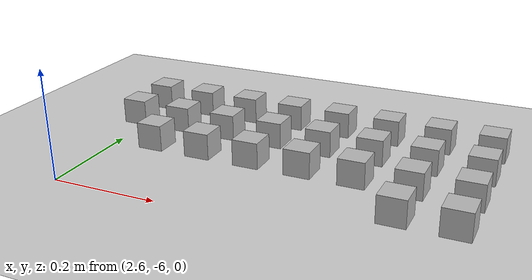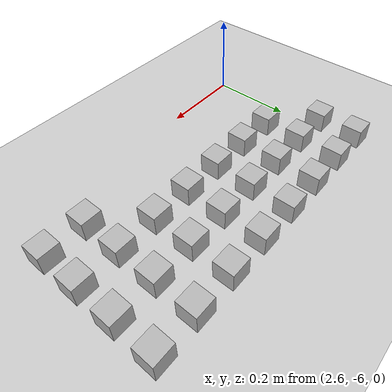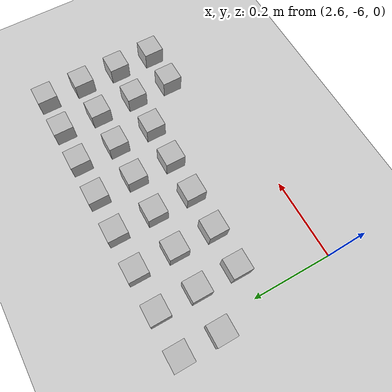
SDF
<sdf version="1.4">
 <world name="default">
  <model name="ground_plane">
   <static>1</static>
   <link name="link">
    <collision name="collision">
     <geometry><plane><normal>0 0 1</normal><size>100 100</size></plane></geometry>
     <surface><friction><ode><mu>100</mu><mu2>50</mu2></ode></friction></surface>
    </collision>
    <visual name="visual">
     <cast_shadows>0</cast_shadows>
     <geometry><plane><normal>0 0 1</normal><size>100 100</size></plane></geometry>
     <material>
      <script><uri>file://media/materials/scripts/gazebo.material</uri><name>Gazebo/Grey</name></script>
     </material>
    </visual>
    <velocity_decay><linear>0</linear><angular>0</angular></velocity_decay>
   </link>
  </model>
  <model name="at230">
   <static>0</static>
   <link name="link">
    <inertial>
     <mass>0.01</mass>
     <inertia><ixx>4e-05</ixx><ixy>0</ixy><ixz>0</ixz><iyy>4e-05</iyy><iyz>0</iyz><izz>4e-05</izz></inertia>
    </inertial>
    <visual name="visual">
     <geometry><box><size>0.05 0.05 0.05</size></box></geometry>
     <material>
      <script>
       <uri>model://at0/materials/scripts</uri>
       <uri>model://at0/materials/textures</uri>
       <name>at0/Diffuse</name>
      </script>
     </material>
    </visual>
    <collision name="collision">
     <geometry><box><size>0.05 0.05 0.05</size></box></geometry>
     <surface><friction><ode><mu>0.8</mu><mu2>0.7</mu2></ode></friction></surface>
    </collision>
    <velocity_decay><linear>0</linear><angular>0</angular></velocity_decay>
   </link>
   <pose>3.17793 -5.89871 0.025 0 -0 0</pose>
  </model>
  <model name="at231">
   <static>0</static>
   <link name="link">
    <inertial>
     <mass>0.01</mass>
     <inertia><ixx>4e-05</ixx><ixy>0</ixy><ixz>0</ixz><iyy>4e-05</iyy><iyz>0</iyz><izz>4e-05</izz></inertia>
    </inertial>
    <visual name="visual">
     <geometry><box><size>0.05 0.05 0.05</size></box></geometry>
     <material>
      <script>
       <uri>model://at0/materials/scripts</uri>
       <uri>model://at0/materials/textures</uri>
       <name>at0/Diffuse</name>
      </script>
     </material>
    </visual>
    <collision name="collision">
     <geometry><box><size>0.05 0.05 0.05</size></box></geometry>
     <surface><friction><ode><mu>0.8</mu><mu2>0.7</mu2></ode></friction></surface>
    </collision>
    <velocity_decay><linear>0</linear><angular>0</angular></velocity_decay>
   </link>
   <pose>3.27793 -5.89871 0.025 0 -0 0</pose>
  </model>
  <model name="at233">
   <static>0</static>
   <link name="link">
    <inertial>
     <mass>0.01</mass>
     <inertia><ixx>4e-05</ixx><ixy>0</ixy><ixz>0</ixz><iyy>4e-05</iyy><iyz>0</iyz><izz>4e-05</izz></inertia>
    </inertial>
    <visual name="visual">
     <geometry><box><size>0.05 0.05 0.05</size></box></geometry>
     <material>
      <script>
       <uri>model://at0/materials/scripts</uri>
       <uri>model://at0/materials/textures</uri>
       <name>at0/Diffuse</name>
      </script>
     </material>
    </visual>
    <collision name="collision">
     <geometry><box><size>0.05 0.05 0.05</size></box></geometry>
     <surface><friction><ode><mu>0.8</mu><mu2>0.7</mu2></ode></friction></surface>
    </collision>
    <velocity_decay><linear>0</linear><angular>0</angular></velocity_decay>
   </link>
   <pose>2.67793 -5.79871 0.025 0 -0 0</pose>
  </model>
  <model name="at234">
   <static>0</static>
   <link name="link">
    <inertial>
     <mass>0.01</mass>
     <inertia><ixx>4e-05</ixx><ixy>0</ixy><ixz>0</ixz><iyy>4e-05</iyy><iyz>0</iyz><izz>4e-05</izz></inertia>
    </inertial>
    <visual name="visual">
     <geometry><box><size>0.05 0.05 0.05</size></box></geometry>
     <material>
      <script>
       <uri>model://at0/materials/scripts</uri>
       <uri>model://at0/materials/textures</uri>
       <name>at0/Diffuse</name>
      </script>
     </material>
    </visual>
    <collision name="collision">
     <geometry><box><size>0.05 0.05 0.05</size></box></geometry>
     <surface><friction><ode><mu>0.8</mu><mu2>0.7</mu2></ode></friction></surface>
    </collision>
    <velocity_decay><linear>0</linear><angular>0</angular></velocity_decay>
   </link>
   <pose>2.77793 -5.79871 0.025 0 -0 0</pose>
  </model>
  <model name="at235">
   <static>0</static>
   <link name="link">
    <inertial>
     <mass>0.01</mass>
     <inertia><ixx>4e-05</ixx><ixy>0</ixy><ixz>0</ixz><iyy>4e-05</iyy><iyz>0</iyz><izz>4e-05</izz></inertia>
    </inertial>
    <visual name="visual">
     <geometry><box><size>0.05 0.05 0.05</size></box></geometry>
     <material>
      <script>
       <uri>model://at0/materials/scripts</uri>
       <uri>model://at0/materials/textures</uri>
       <name>at0/Diffuse</name>
      </script>
     </material>
    </visual>
    <collision name="collision">
     <geometry><box><size>0.05 0.05 0.05</size></box></geometry>
     <surface><friction><ode><mu>0.8</mu><mu2>0.7</mu2></ode></friction></surface>
    </collision>
    <velocity_decay><linear>0</linear><angular>0</angular></velocity_decay>
   </link>
   <pose>2.87793 -5.79871 0.025 0 -0 0</pose>
  </model>
  <model name="at236">
   <static>0</static>
   <link name="link">
    <inertial>
     <mass>0.01</mass>
     <inertia><ixx>4e-05</ixx><ixy>0</ixy><ixz>0</ixz><iyy>4e-05</iyy><iyz>0</iyz><izz>4e-05</izz></inertia>
    </inertial>
    <visual name="visual">
     <geometry><box><size>0.05 0.05 0.05</size></box></geometry>
     <material>
      <script>
       <uri>model://at0/materials/scripts</uri>
       <uri>model://at0/materials/textures</uri>
       <name>at0/Diffuse</name>
      </script>
     </material>
    </visual>
    <collision name="collision">
     <geometry><box><size>0.05 0.05 0.05</size></box></geometry>
     <surface><friction><ode><mu>0.8</mu><mu2>0.7</mu2></ode></friction></surface>
    </collision>
    <velocity_decay><linear>0</linear><angular>0</angular></velocity_decay>
   </link>
   <pose>2.97793 -5.79871 0.025 0 -0 0</pose>
  </model>
  <model name="at237">
   <static>0</static>
   <link name="link">
    <inertial>
     <mass>0.01</mass>
     <inertia><ixx>4e-05</ixx><ixy>0</ixy><ixz>0</ixz><iyy>4e-05</iyy><iyz>0</iyz><izz>4e-05</izz></inertia>
    </inertial>
    <visual name="visual">
     <geometry><box><size>0.05 0.05 0.05</size></box></geometry>
     <material>
      <script>
       <uri>model://at0/materials/scripts</uri>
       <uri>model://at0/materials/textures</uri>
       <name>at0/Diffuse</name>
      </script>
     </material>
    </visual>
    <collision name="collision">
     <geometry><box><size>0.05 0.05 0.05</size></box></geometry>
     <surface><friction><ode><mu>0.8</mu><mu2>0.7</mu2></ode></friction></surface>
    </collision>
    <velocity_decay><linear>0</linear><angular>0</angular></velocity_decay>
   </link>
   <pose>3.07793 -5.79871 0.025 0 -0 0</pose>
  </model>
  <model name="at238">
   <static>0</static>
   <link name="link">
    <inertial>
     <mass>0.01</mass>
     <inertia><ixx>4e-05</ixx><ixy>0</ixy><ixz>0</ixz><iyy>4e-05</iyy><iyz>0</iyz><izz>4e-05</izz></inertia>
    </inertial>
    <visual name="visual">
     <geometry><box><size>0.05 0.05 0.05</size></box></geometry>
     <material>
      <script>
       <uri>model://at0/materials/scripts</uri>
       <uri>model://at0/materials/textures</uri>
       <name>at0/Diffuse</name>
      </script>
     </material>
    </visual>
    <collision name="collision">
     <geometry><box><size>0.05 0.05 0.05</size></box></geometry>
     <surface><friction><ode><mu>0.8</mu><mu2>0.7</mu2></ode></friction></surface>
    </collision>
    <velocity_decay><linear>0</linear><angular>0</angular></velocity_decay>
   </link>
   <pose>3.17793 -5.79871 0.025 0 -0 0</pose>
  </model>
  <model name="at239">
   <static>0</static>
   <link name="link">
    <inertial>
     <mass>0.01</mass>
     <inertia><ixx>4e-05</ixx><ixy>0</ixy><ixz>0</ixz><iyy>4e-05</iyy><iyz>0</iyz><izz>4e-05</izz></inertia>
    </inertial>
    <visual name="visual">
     <geometry><box><size>0.05 0.05 0.05</size></box></geometry>
     <material>
      <script>
       <uri>model://at0/materials/scripts</uri>
       <uri>model://at0/materials/textures</uri>
       <name>at0/Diffuse</name>
      </script>
     </material>
    </visual>
    <collision name="collision">
     <geometry><box><size>0.05 0.05 0.05</size></box></geometry>
     <surface><friction><ode><mu>0.8</mu><mu2>0.7</mu2></ode></friction></surface>
    </collision>
    <velocity_decay><linear>0</linear><angular>0</angular></velocity_decay>
   </link>
   <pose>3.27793 -5.79871 0.025 0 -0 0</pose>
  </model>
  <model name="at240">
   <static>0</static>
   <link name="link">
    <inertial>
     <mass>0.01</mass>
     <inertia><ixx>4e-05</ixx><ixy>0</ixy><ixz>0</ixz><iyy>4e-05</iyy><iyz>0</iyz><izz>4e-05</izz></inertia>
    </inertial>
    <visual name="visual">
     <geometry><box><size>0.05 0.05 0.05</size></box></geometry>
     <material>
      <script>
       <uri>model://at0/materials/scripts</uri>
       <uri>model://at0/materials/textures</uri>
       <name>at0/Diffuse</name>
      </script>
     </material>
    </visual>
    <collision name="collision">
     <geometry><box><size>0.05 0.05 0.05</size></box></geometry>
     <surface><friction><ode><mu>0.8</mu><mu2>0.7</mu2></ode></friction></surface>
    </collision>
    <velocity_decay><linear>0</linear><angular>0</angular></velocity_decay>
   </link>
   <pose>2.57793 -5.69871 0.025 0 -0 0</pose>
  </model>
  <model name="at241">
   <static>0</static>
   <link name="link">
    <inertial>
     <mass>0.01</mass>
     <inertia><ixx>4e-05</ixx><ixy>0</ixy><ixz>0</ixz><iyy>4e-05</iyy><iyz>0</iyz><izz>4e-05</izz></inertia>
    </inertial>
    <visual name="visual">
     <geometry><box><size>0.05 0.05 0.05</size></box></geometry>
     <material>
      <script>
       <uri>model://at0/materials/scripts</uri>
       <uri>model://at0/materials/textures</uri>
       <name>at0/Diffuse</name>
      </script>
     </material>
    </visual>
    <collision name="collision">
     <geometry><box><size>0.05 0.05 0.05</size></box></geometry>
     <surface><friction><ode><mu>0.8</mu><mu2>0.7</mu2></ode></friction></surface>
    </collision>
    <velocity_decay><linear>0</linear><angular>0</angular></velocity_decay>
   </link>
   <pose>2.67793 -5.69871 0.025 0 -0 0</pose>
  </model>
  <model name="at242">
   <static>0</static>
   <link name="link">
    <inertial>
     <mass>0.01</mass>
     <inertia><ixx>4e-05</ixx><ixy>0</ixy><ixz>0</ixz><iyy>4e-05</iyy><iyz>0</iyz><izz>4e-05</izz></inertia>
    </inertial>
    <visual name="visual">
     <geometry><box><size>0.05 0.05 0.05</size></box></geometry>
     <material>
      <script>
       <uri>model://at0/materials/scripts</uri>
       <uri>model://at0/materials/textures</uri>
       <name>at0/Diffuse</name>
      </script>
     </material>
    </visual>
    <collision name="collision">
     <geometry><box><size>0.05 0.05 0.05</size></box></geometry>
     <surface><friction><ode><mu>0.8</mu><mu2>0.7</mu2></ode></friction></surface>
    </collision>
    <velocity_decay><linear>0</linear><angular>0</angular></velocity_decay>
   </link>
   <pose>2.77793 -5.69871 0.025 0 -0 0</pose>
  </model>
  <model name="at243">
   <static>0</static>
   <link name="link">
    <inertial>
     <mass>0.01</mass>
     <inertia><ixx>4e-05</ixx><ixy>0</ixy><ixz>0</ixz><iyy>4e-05</iyy><iyz>0</iyz><izz>4e-05</izz></inertia>
    </inertial>
    <visual name="visual">
     <geometry><box><size>0.05 0.05 0.05</size></box></geometry>
     <material>
      <script>
       <uri>model://at0/materials/scripts</uri>
       <uri>model://at0/materials/textures</uri>
       <name>at0/Diffuse</name>
      </script>
     </material>
    </visual>
    <collision name="collision">
     <geometry><box><size>0.05 0.05 0.05</size></box></geometry>
     <surface><friction><ode><mu>0.8</mu><mu2>0.7</mu2></ode></friction></surface>
    </collision>
    <velocity_decay><linear>0</linear><angular>0</angular></velocity_decay>
   </link>
   <pose>2.87793 -5.69871 0.025 0 -0 0</pose>
  </model>
  <model name="at244">
   <static>0</static>
   <link name="link">
    <inertial>
     <mass>0.01</mass>
     <inertia><ixx>4e-05</ixx><ixy>0</ixy><ixz>0</ixz><iyy>4e-05</iyy><iyz>0</iyz><izz>4e-05</izz></inertia>
    </inertial>
    <visual name="visual">
     <geometry><box><size>0.05 0.05 0.05</size></box></geometry>
     <material>
      <script>
       <uri>model://at0/materials/scripts</uri>
       <uri>model://at0/materials/textures</uri>
       <name>at0/Diffuse</name>
      </script>
     </material>
    </visual>
    <collision name="collision">
     <geometry><box><size>0.05 0.05 0.05</size></box></geometry>
     <surface><friction><ode><mu>0.8</mu><mu2>0.7</mu2></ode></friction></surface>
    </collision>
    <velocity_decay><linear>0</linear><angular>0</angular></velocity_decay>
   </link>
   <pose>2.97793 -5.69871 0.025 0 -0 0</pose>
  </model>
  <model name="at245">
   <static>0</static>
   <link name="link">
    <inertial>
     <mass>0.01</mass>
     <inertia><ixx>4e-05</ixx><ixy>0</ixy><ixz>0</ixz><iyy>4e-05</iyy><iyz>0</iyz><izz>4e-05</izz></inertia>
    </inertial>
    <visual name="visual">
     <geometry><box><size>0.05 0.05 0.05</size></box></geometry>
     <material>
      <script>
       <uri>model://at0/materials/scripts</uri>
       <uri>model://at0/materials/textures</uri>
       <name>at0/Diffuse</name>
      </script>
     </material>
    </visual>
    <collision name="collision">
     <geometry><box><size>0.05 0.05 0.05</size></box></geometry>
     <surface><friction><ode><mu>0.8</mu><mu2>0.7</mu2></ode></friction></surface>
    </collision>
    <velocity_decay><linear>0</linear><angular>0</angular></velocity_decay>
   </link>
   <pose>3.07793 -5.69871 0.025 0 -0 0</pose>
  </model>
  <model name="at246">
   <static>0</static>
   <link name="link">
    <inertial>
     <mass>0.01</mass>
     <inertia><ixx>4e-05</ixx><ixy>0</ixy><ixz>0</ixz><iyy>4e-05</iyy><iyz>0</iyz><izz>4e-05</izz></inertia>
    </inertial>
    <visual name="visual">
     <geometry><box><size>0.05 0.05 0.05</size></box></geometry>
     <material>
      <script>
       <uri>model://at0/materials/scripts</uri>
       <uri>model://at0/materials/textures</uri>
       <name>at0/Diffuse</name>
      </script>
     </material>
    </visual>
    <collision name="collision">
     <geometry><box><size>0.05 0.05 0.05</size></box></geometry>
     <surface><friction><ode><mu>0.8</mu><mu2>0.7</mu2></ode></friction></surface>
    </collision>
    <velocity_decay><linear>0</linear><angular>0</angular></velocity_decay>
   </link>
   <pose>3.17793 -5.69871 0.025 0 -0 0</pose>
  </model>
  <model name="at247">
   <static>0</static>
   <link name="link">
    <inertial>
     <mass>0.01</mass>
     <inertia><ixx>4e-05</ixx><ixy>0</ixy><ixz>0</ixz><iyy>4e-05</iyy><iyz>0</iyz><izz>4e-05</izz></inertia>
    </inertial>
    <visual name="visual">
     <geometry><box><size>0.05 0.05 0.05</size></box></geometry>
     <material>
      <script>
       <uri>model://at0/materials/scripts</uri>
       <uri>model://at0/materials/textures</uri>
       <name>at0/Diffuse</name>
      </script>
     </material>
    </visual>
    <collision name="collision">
     <geometry><box><size>0.05 0.05 0.05</size></box></geometry>
     <surface><friction><ode><mu>0.8</mu><mu2>0.7</mu2></ode></friction></surface>
    </collision>
    <velocity_decay><linear>0</linear><angular>0</angular></velocity_decay>
   </link>
   <pose>3.27793 -5.69871 0.025 0 -0 0</pose>
  </model>
  <model name="at248">
   <static>0</static>
   <link name="link">
    <inertial>
     <mass>0.01</mass>
     <inertia><ixx>4e-05</ixx><ixy>0</ixy><ixz>0</ixz><iyy>4e-05</iyy><iyz>0</iyz><izz>4e-05</izz></inertia>
    </inertial>
    <visual name="visual">
     <geometry><box><size>0.05 0.05 0.05</size></box></geometry>
     <material>
      <script>
       <uri>model://at0/materials/scripts</uri>
       <uri>model://at0/materials/textures</uri>
       <name>at0/Diffuse</name>
      </script>
     </material>
    </visual>
    <collision name="collision">
     <geometry><box><size>0.05 0.05 0.05</size></box></geometry>
     <surface><friction><ode><mu>0.8</mu><mu2>0.7</mu2></ode></friction></surface>
    </collision>
    <velocity_decay><linear>0</linear><angular>0</angular></velocity_decay>
   </link>
   <pose>2.57793 -5.59871 0.025 0 -0 0</pose>
  </model>
  <model name="at249">
   <static>0</static>
   <link name="link">
    <inertial>
     <mass>0.01</mass>
     <inertia><ixx>4e-05</ixx><ixy>0</ixy><ixz>0</ixz><iyy>4e-05</iyy><iyz>0</iyz><izz>4e-05</izz></inertia>
    </inertial>
    <visual name="visual">
     <geometry><box><size>0.05 0.05 0.05</size></box></geometry>
     <material>
      <script>
       <uri>model://at0/materials/scripts</uri>
       <uri>model://at0/materials/textures</uri>
       <name>at0/Diffuse</name>
      </script>
     </material>
    </visual>
    <collision name="collision">
     <geometry><box><size>0.05 0.05 0.05</size></box></geometry>
     <surface><friction><ode><mu>0.8</mu><mu2>0.7</mu2></ode></friction></surface>
    </collision>
    <velocity_decay><linear>0</linear><angular>0</angular></velocity_decay>
   </link>
   <pose>2.67793 -5.59871 0.025 0 -0 0</pose>
  </model>
  <model name="at250">
   <static>0</static>
   <link name="link">
    <inertial>
     <mass>0.01</mass>
     <inertia><ixx>4e-05</ixx><ixy>0</ixy><ixz>0</ixz><iyy>4e-05</iyy><iyz>0</iyz><izz>4e-05</izz></inertia>
    </inertial>
    <visual name="visual">
     <geometry><box><size>0.05 0.05 0.05</size></box></geometry>
     <material>
      <script>
       <uri>model://at0/materials/scripts</uri>
       <uri>model://at0/materials/textures</uri>
       <name>at0/Diffuse</name>
      </script>
     </material>
    </visual>
    <collision name="collision">
     <geometry><box><size>0.05 0.05 0.05</size></box></geometry>
     <surface><friction><ode><mu>0.8</mu><mu2>0.7</mu2></ode></friction></surface>
    </collision>
    <velocity_decay><linear>0</linear><angular>0</angular></velocity_decay>
   </link>
   <pose>2.77793 -5.59871 0.025 0 -0 0</pose>
  </model>
  <model name="at251">
   <static>0</static>
   <link name="link">
    <inertial>
     <mass>0.01</mass>
     <inertia><ixx>4e-05</ixx><ixy>0</ixy><ixz>0</ixz><iyy>4e-05</iyy><iyz>0</iyz><izz>4e-05</izz></inertia>
    </inertial>
    <visual name="visual">
     <geometry><box><size>0.05 0.05 0.05</size></box></geometry>
     <material>
      <script>
       <uri>model://at0/materials/scripts</uri>
       <uri>model://at0/materials/textures</uri>
       <name>at0/Diffuse</name>
      </script>
     </material>
    </visual>
    <collision name="collision">
     <geometry><box><size>0.05 0.05 0.05</size></box></geometry>
     <surface><friction><ode><mu>0.8</mu><mu2>0.7</mu2></ode></friction></surface>
    </collision>
    <velocity_decay><linear>0</linear><angular>0</angular></velocity_decay>
   </link>
   <pose>2.87793 -5.59871 0.025 0 -0 0</pose>
  </model>
  <model name="at252">
   <static>0</static>
   <link name="link">
    <inertial>
     <mass>0.01</mass>
     <inertia><ixx>4e-05</ixx><ixy>0</ixy><ixz>0</ixz><iyy>4e-05</iyy><iyz>0</iyz><izz>4e-05</izz></inertia>
    </inertial>
    <visual name="visual">
     <geometry><box><size>0.05 0.05 0.05</size></box></geometry>
     <material>
      <script>
       <uri>model://at0/materials/scripts</uri>
       <uri>model://at0/materials/textures</uri>
       <name>at0/Diffuse</name>
      </script>
     </material>
    </visual>
    <collision name="collision">
     <geometry><box><size>0.05 0.05 0.05</size></box></geometry>
     <surface><friction><ode><mu>0.8</mu><mu2>0.7</mu2></ode></friction></surface>
    </collision>
    <velocity_decay><linear>0</linear><angular>0</angular></velocity_decay>
   </link>
   <pose>2.97793 -5.59871 0.025 0 -0 0</pose>
  </model>
  <model name="at253">
   <static>0</static>
   <link name="link">
    <inertial>
     <mass>0.01</mass>
     <inertia><ixx>4e-05</ixx><ixy>0</ixy><ixz>0</ixz><iyy>4e-05</iyy><iyz>0</iyz><izz>4e-05</izz></inertia>
    </inertial>
    <visual name="visual">
     <geometry><box><size>0.05 0.05 0.05</size></box></geometry>
     <material>
      <script>
       <uri>model://at0/materials/scripts</uri>
       <uri>model://at0/materials/textures</uri>
       <name>at0/Diffuse</name>
      </script>
     </material>
    </visual>
    <collision name="collision">
     <geometry><box><size>0.05 0.05 0.05</size></box></geometry>
     <surface><friction><ode><mu>0.8</mu><mu2>0.7</mu2></ode></friction></surface>
    </collision>
    <velocity_decay><linear>0</linear><angular>0</angular></velocity_decay>
   </link>
   <pose>3.07793 -5.59871 0.025 0 -0 0</pose>
  </model>
  <model name="at254">
   <static>0</static>
   <link name="link">
    <inertial>
     <mass>0.01</mass>
     <inertia><ixx>4e-05</ixx><ixy>0</ixy><ixz>0</ixz><iyy>4e-05</iyy><iyz>0</iyz><izz>4e-05</izz></inertia>
    </inertial>
    <visual name="visual">
     <geometry><box><size>0.05 0.05 0.05</size></box></geometry>
     <material>
      <script>
       <uri>model://at0/materials/scripts</uri>
       <uri>model://at0/materials/textures</uri>
       <name>at0/Diffuse</name>
      </script>
     </material>
    </visual>
    <collision name="collision">
     <geometry><box><size>0.05 0.05 0.05</size></box></geometry>
     <surface><friction><ode><mu>0.8</mu><mu2>0.7</mu2></ode></friction></surface>
    </collision>
    <velocity_decay><linear>0</linear><angular>0</angular></velocity_decay>
   </link>
   <pose>3.17793 -5.59871 0.025 0 -0 0</pose>
  </model>
  <model name="at255">
   <static>0</static>
   <link name="link">
    <inertial>
     <mass>0.01</mass>
     <inertia><ixx>4e-05</ixx><ixy>0</ixy><ixz>0</ixz><iyy>4e-05</iyy><iyz>0</iyz><izz>4e-05</izz></inertia>
    </inertial>
    <visual name="visual">
     <geometry><box><size>0.05 0.05 0.05</size></box></geometry>
     <material>
      <script>
       <uri>model://at0/materials/scripts</uri>
       <uri>model://at0/materials/textures</uri>
       <name>at0/Diffuse</name>
      </script>
     </material>
    </visual>
    <collision name="collision">
     <geometry><box><size>0.05 0.05 0.05</size></box></geometry>
     <surface><friction><ode><mu>0.8</mu><mu2>0.7</mu2></ode></friction></surface>
    </collision>
    <velocity_decay><linear>0</linear><angular>0</angular></velocity_decay>
   </link>
   <pose>3.27793 -5.59871 0.025 0 -0 0</pose>
  </model>
 </world>
</sdf>
